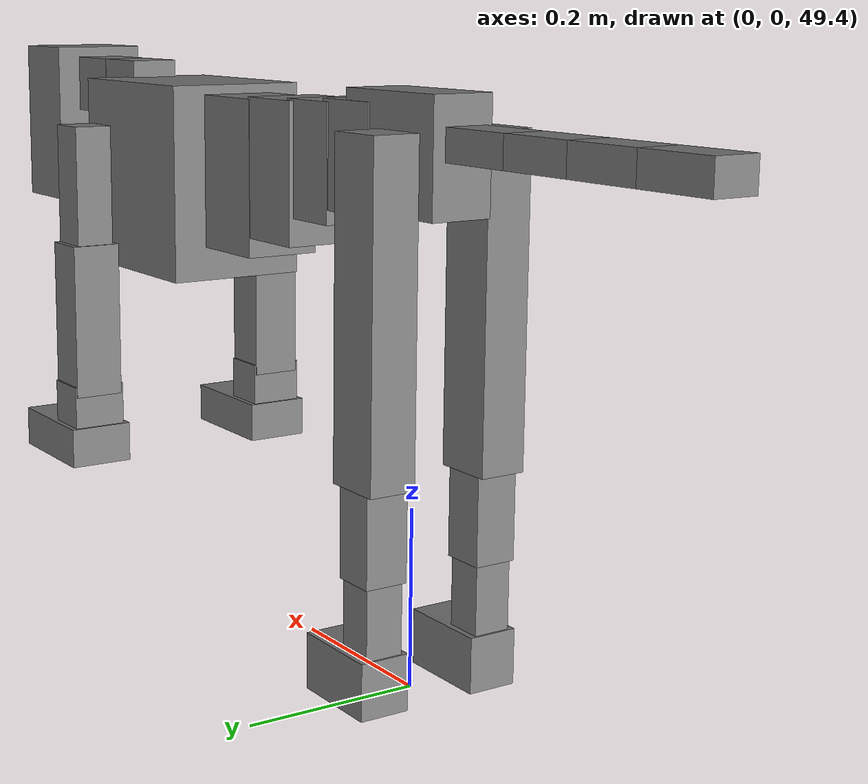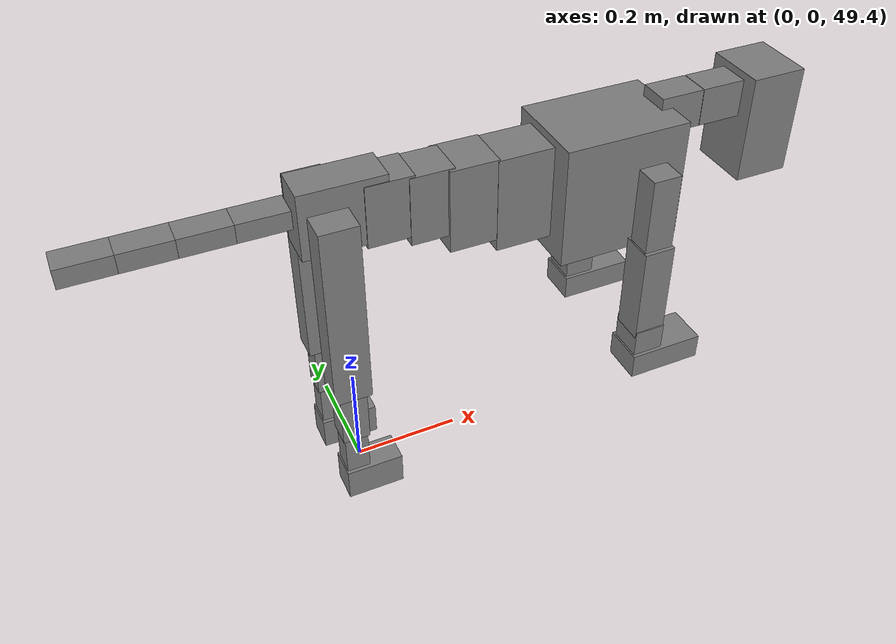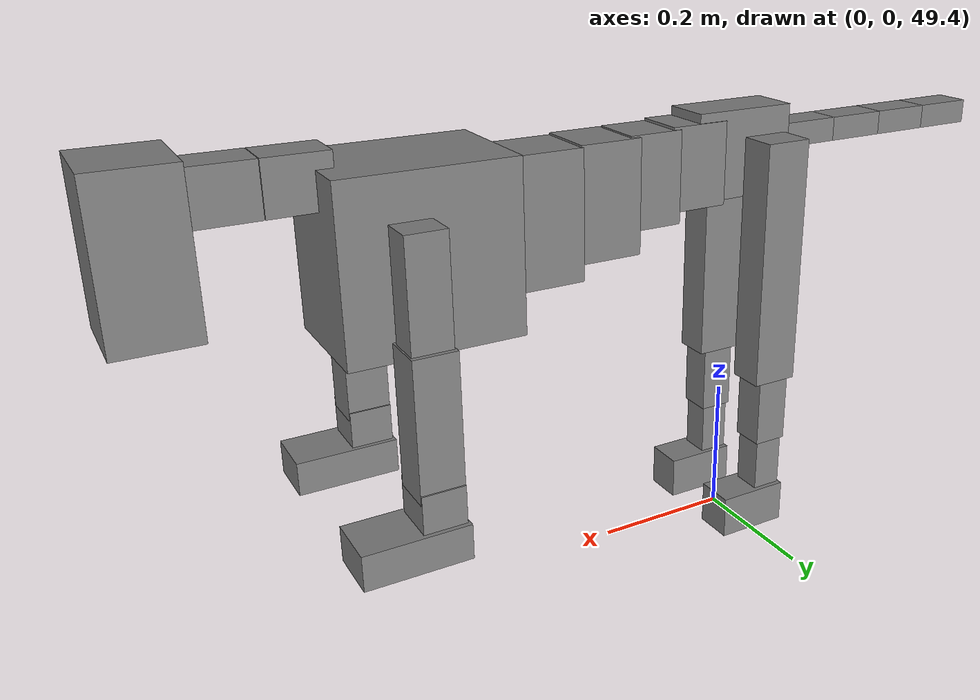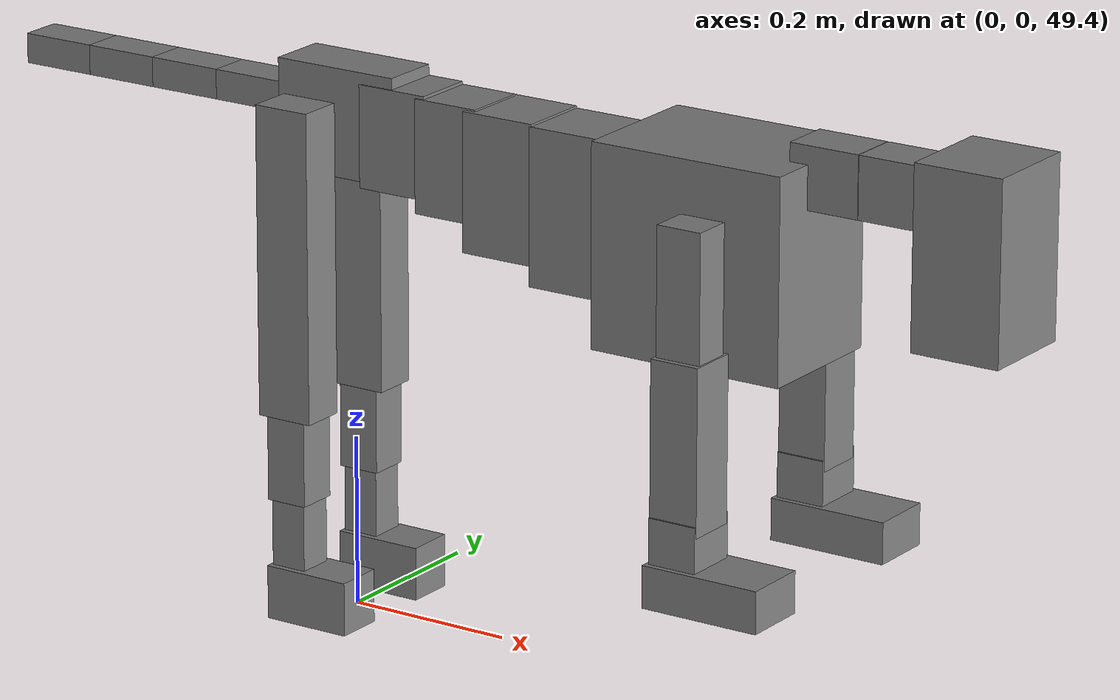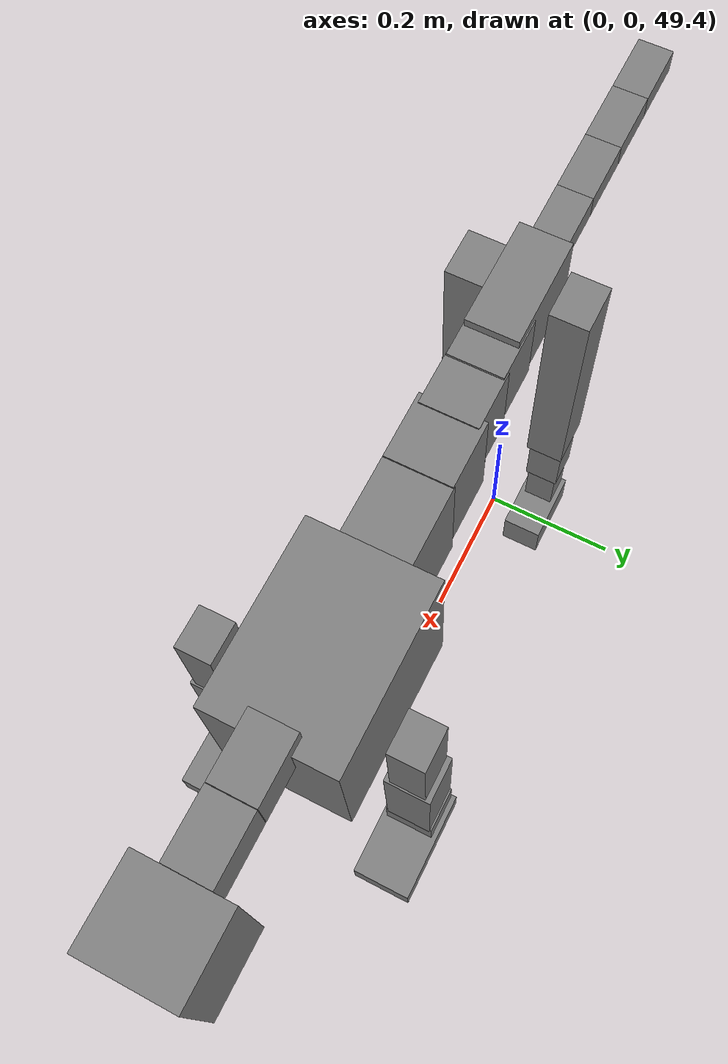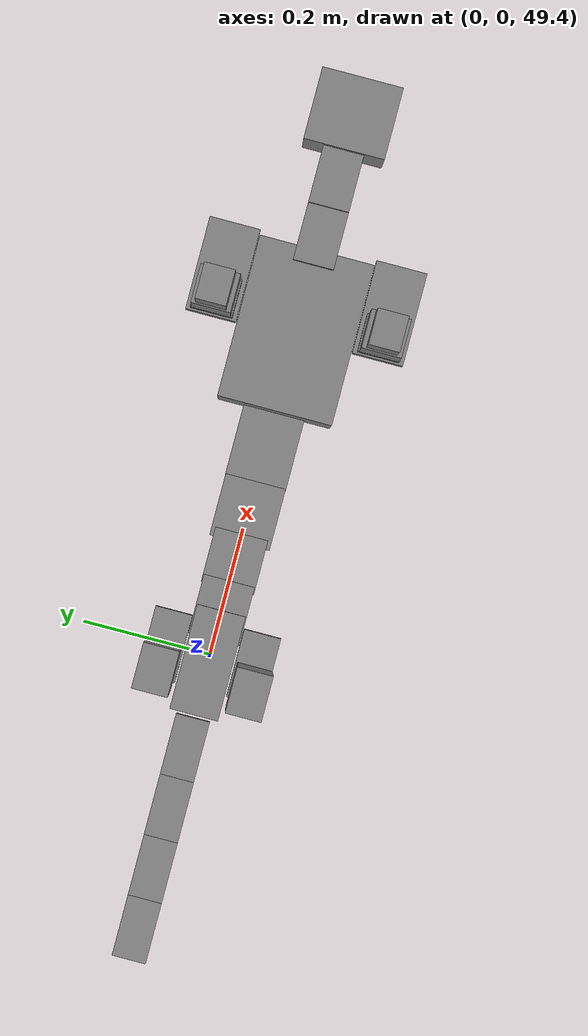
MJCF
<mujoco model="dog">

    <default>
        <joint armature="0.02" stiffness="1" damping="0.2" limited="true"/>
        <geom condim="3" friction="1 0.05 0.05" margin="0.01"/>
        <motor ctrllimited="true" ctrlrange="-1.0 1.0" forcelimited="true" gear="50"/>
    </default>

    <compiler inertiafromgeom="true" angle="radian"/>

    <option timestep="0.016" iterations="50" tolerance="1e-10" solver="Newton" jacobian="dense" cone="pyramidal"/>

    <size nconmax="20000" njmax="60000" nstack="5000000"/>
    <visual>
        <map force="0.1" zfar="30"/>
        <rgba haze="0.15 0.25 0.35 1"/>
        <quality shadowsize="2048"/>
        <global offwidth="800" offheight="800"/>
    </visual>

    <asset>
        <texture type="skybox" builtin="gradient" rgb1="0.3 0.5 0.7" rgb2="0 0 0" width="512" height="512"/>
        <texture name="texplane" type="2d" builtin="checker" rgb1=".2 .3 .4" rgb2=".1 0.15 0.2" width="512" height="512"
                 mark="cross" markrgb=".8 .8 .8"/>
        <texture name="texgeom" type="cube" builtin="flat" mark="cross" width="127" height="1278" rgb1="0.8 0.6 0.4"
                 rgb2="0.8 0.6 0.4" markrgb="1 1 1" random="0.01"/>

        <material name="matplane" reflectance="0.3" texture="texplane" texrepeat="1 1" texuniform="true"/>
        <material name="matgeom" texture="texgeom" texuniform="true" rgba="0.8 0.6 .4 1"/>
    </asset>

    <worldbody>
        <geom name="floor" pos="0 0 0" size="0 0 .25" type="plane" material="matplane" condim="3"/>

        <light directional="false" diffuse=".2 .2 .2" specular="0 0 0" pos="0 0 5" dir="0 0 -1" castshadow="false"/>
        <light mode="targetbodycom" target="torso" directional="false" diffuse=".8 .8 .8" specular="0.3 0.3 0.3"
               pos="0 0 4.0" dir="0 0 -1"/>

        <body name="root" pos="0 0 50">
            <freejoint name="root_1"/>
            <geom type="box" pos="0 0 -0.02" size="0.0774  0.0358  0.063" density="2030"/>

            <body name="spine1" pos="0.054 0 0">
                <joint name="spine1_y" axis="0 1 0" range="0 0.7" limited="true"/>
                <geom type="box" pos="0.02375 0 -0.03" size="0.04375  0.0375  0.05985" density="2030"/>

                <body name="spine2" pos="0.0612 0 0">
                    <joint name="spine2_y" axis="0 1 0" range="-0.15 0.15" limited="true"/>
                    <geom type="box" pos="0.03555  0  -0.04" size="0.04055  0.039  0.06615" density="2030"/>

                    <body name="spine3" pos="0.0730 0 0">
                        <joint name="spine3_y" axis="0 1 0" range="-0.15 0.15" limited="true"/>
                        <geom type="box" pos="0.03555  0  -0.057" size="0.04555  0.0445  0.081" density="2030"/>

                        <body name="spine4" pos="0.0780 0 0">
                            <joint name="spine4_y" axis="0 1 0" range="-0.15 0.15" limited="true"/>
                            <geom type="box" pos="0.05265  0  -0.07" size="0.05265  0.045  0.09135" density="2030"/>

                            <body name="torso" pos="0.1082 0 0">
                                <joint name="torso_y" axis="0 1 0" range="-0.15 0.15" limited="true"/>
                                <geom type="box" pos="0.11925  0  -0.085" size="0.11925  0.085  0.11745"
                                      density="2030"/>

                                <body name="neck1" pos="0.2160  0   0.0180">
                                    <joint name="neck1_y" axis="0 1 0" range="-1.2  -1" limited="true"/>
                                    <geom type="box" pos="0.0423  0  0" size="0.0423  0.03  0.036" density="2325"/>

                                    <body name="neck2" pos="0.0853  0  0">
                                        <joint name="neck2_y" axis="0 1 0" range="0.1  0" limited="true"/>
                                        <geom type="box" pos="0.0423  0  0" size="0.0423  0.03  0.036" density="2325"/>

                                        <body name="head" pos="0.0853  0  0">
                                            <joint name="head_y" axis="0 1 0" range="-0.3  -0.2" limited="true"/>
                                            <geom type="box" pos="0.0531  0  -0.055" size="0.0531  0.06  0.1044"
                                                  density="4030"/>

                                        </body>
                                    </body>
                                </body>

                                <body name="front_shoulder" pos="0.156  0   -0.0480">
                                    <joint name="front_shoulder_y" axis="0 1 0" range="-1 1.5" limited="true"/>
                                    <geom type="box" pos="0 0.13 -0.0604" size="0.0273  0.0234  0.0871" density="1158"/>
                                    <geom type="box" pos="0 -0.13 -0.0604" size="0.0273  0.0234  0.0871"
                                          density="1158"/>

                                    <body name="front_elbow" pos="0  0  -0.1209">
                                        <joint name="front_elbow_y" axis="0 1 0" range="-2 0" limited="true"/>
                                        <geom type="box" pos="0 0.13 -0.0959" size="0.0296  0.0303  0.0959"
                                              density="1081"/>
                                        <geom type="box" pos="0 -0.13 -0.0959" size="0.0296  0.0303  0.0959"
                                              density="1081"/>

                                        <body name="front_wrist" pos="0  0  -0.1918">
                                            <joint name="front_wrist_y" axis="0 1 0" range="-0.2 0" limited="true"/>
                                            <geom type="box" pos="0 0.13 -0.0272" size="0.0294  0.0326  0.0404"
                                                  density="1664"/>
                                            <geom type="box" pos="0 -0.13 -0.0272" size="0.0294  0.0326  0.0404"
                                                  density="1664"/>

                                            <body name="front_finger_end" pos="0  0  -0.0545">
                                                <joint name="front_finger_y" axis="0 1 0" range="-0.4 1"
                                                       limited="true"/>
                                                <geom type="box" pos="0.0393  0.13  -0.0095"
                                                      size="0.0720  0.0393  0.0245" density="1515"/>
                                                <geom type="box" pos="0.0393  -0.13  -0.0095"
                                                      size="0.0720  0.0393  0.0245" density="1515"/>

                                            </body>

                                        </body>
                                    </body>
                                </body>

                            </body>
                        </body>
                    </body>
                </body>
            </body>

            <body name="back_hip" pos="-0.03 0 -0.018">
                <joint name="back_hip_y" axis="0 1 0" range="-1.5 0.3" limited="true"/>
                <geom type="box" pos="0 0.07 -0.1587" size="0.0344  0.0270  0.1815" density="1154"/>
                <geom type="box" pos="0 -0.07 -0.1587" size="0.0344  0.0270  0.1815" density="1154"/>

                <body name="back_knee" pos="0  0  -0.3175">
                    <joint name="back_knee_y" axis="0 1 0" range="0 2.8" limited="true"/>
                    <geom type="box" pos="0 0.07 -0.0534" size="0.0250  0.0246  0.0690" density="1227"/>
                    <geom type="box" pos="0 -0.07 -0.0534" size="0.0250  0.0246  0.0690" density="1227"/>

                    <body name="back_ankle" pos="0  0  -0.1069">
                        <joint name="back_ankle_y" axis="0 1 0" range="-2.2 0" limited="true"/>
                        <geom type="box" pos="0 0.07 -0.0544" size="0.0217  0.0217  0.0656" density="1284"/>
                        <geom type="box" pos="0 -0.07 -0.0544" size="0.0217  0.0217  0.0656" density="1284"/>

                        <body name="back_toe_end" pos="0  0  -0.1087">
                            <joint name="back_toe_y" axis="0 1 0" range="-0.4 1" limited="true"/>
                            <geom type="box" pos="0.0290  0.07  -0.0165" size="0.0532  0.0290  0.0315" density="1515"/>
                            <geom type="box" pos="0.0290  -0.07  -0.0165" size="0.0532  0.0290  0.0315" density="1515"/>

                        </body>
                    </body>
                </body>
            </body>

            <body name="tail1" pos="-0.074 0 -0.006">
                <joint name="tail1_y" axis="0 1 0" range="-0.2 0.2" limited="true"/>
                <geom type="box" pos="-0.0536  0  0" size="0.045  0.025  0.0175" density="1587"/>

                <body name="tail2" pos="-0.09 0 0">
                    <joint name="tail2_y" axis="0 1 0" range="-0.2 0.2" limited="true"/>
                    <geom type="box" pos="-0.0536  0  0" size="0.045  0.025  0.0175" density="1587"/>

                    <body name="tail3" pos="-0.09 0 0">
                        <joint name="tail3_y" axis="0 1 0" range="-0.2 0.2" limited="true"/>
                        <geom type="box" pos="-0.0536  0  0" size="0.045  0.025  0.0175" density="1587"/>

                        <body name="tail4" pos="-0.09 0 0">
                            <joint name="tail4_y" axis="0 1 0" range="-0.2 0.2" limited="true"/>
                            <geom type="box" pos="-0.0536  0  0" size="0.045  0.025  0.0175" density="1587"/>

                        </body>
                    </body>
                </body>
            </body>
        </body>
    </worldbody>

    <actuator>
        <motor joint="spine1_y" forcerange="-150 150     "/>
        <motor joint="spine2_y" forcerange="-150 150     "/>
        <motor joint="spine3_y" forcerange="-150 150     "/>
        <motor joint="spine4_y" forcerange="-150 150     "/>
        <motor joint="torso_y" forcerange="-150 150     "/>
        <motor joint="neck1_y" forcerange="-100 100       "/>
        <motor joint="neck2_y" forcerange="-100 100       "/>
        <motor joint="head_y" forcerange="-150 150       "/>
        <motor joint="front_shoulder_y" forcerange="-137.82 117.93"/>
        <motor joint="front_elbow_y" forcerange="-139.10 181.12"/>
        <motor joint="front_wrist_y" forcerange="-116.10 144.98"/>
        <motor joint="front_finger_y" forcerange="-78.89 90.54"/>
        <motor joint="back_hip_y" forcerange="-205.33 354.54"/>
        <motor joint="back_knee_y" forcerange="-321.44 236.37"/>
        <motor joint="back_angle_y" forcerange="-66.62 181.26"/>
        <motor joint="back_toe_y" forcerange="-24.12 127.84"/>
        <motor joint="tail1_y" forcerange="-50 50     "/>
        <motor joint="tail2_y" forcerange="-50 50     "/>
        <motor joint="tail3_y" forcerange="-50 50     "/>
        <motor joint="tail4_y" forcerange="-50 50     "/>
    </actuator>
</mujoco>
